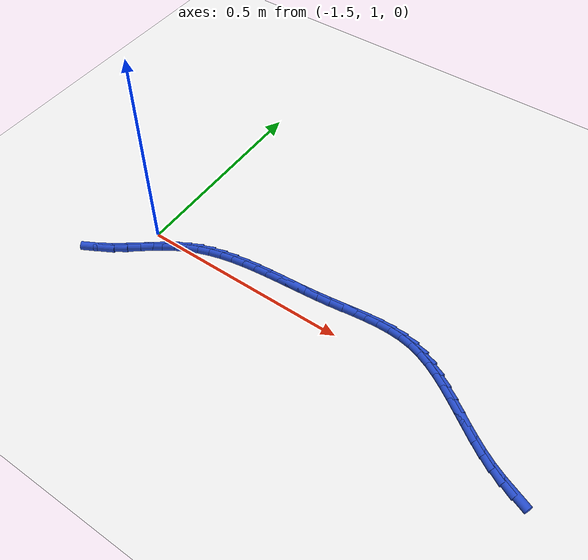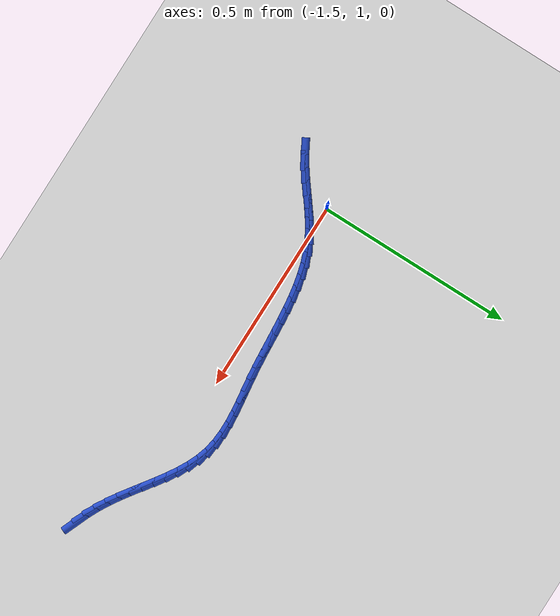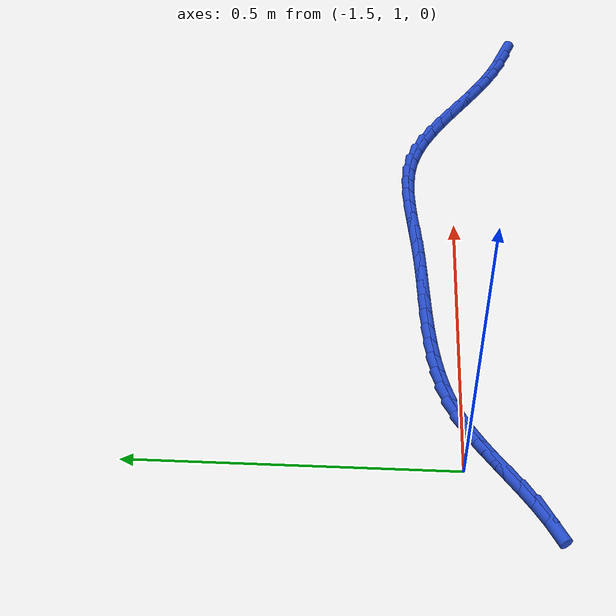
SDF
<sdf version="1.6">
 <world name="default">
  <model name="ground_plane">
   <static>1</static>
   <link name="link">
    <collision name="collision">
     <geometry><plane><normal>0 0 1</normal><size>100 100</size></plane></geometry>
     <surface><friction><ode><mu>100</mu><mu2>50</mu2></ode></friction></surface>
    </collision>
    <visual name="visual">
     <cast_shadows>0</cast_shadows>
     <geometry><plane><normal>0 0 1</normal><size>100 100</size></plane></geometry>
     <material>
      <script><uri>file://media/materials/scripts/gazebo.material</uri><name>Gazebo/WhiteGlow</name></script>
     </material>
    </visual>
   </link>
  </model>
  <model name="line">
   <link name="link_37">
    <pose>-0.5398096283026466 0.8931697962810513 0.01 0 1.57 -0.3888230230529627</pose>
    <collision name="collision">
     <geometry><cylinder><radius>0.01</radius><length>0.08</length></cylinder></geometry>
    </collision>
    <visual name="visual">
     <material>
      <script><name>Gazebo/Blue</name><uri>file://media/materials/scripts/gazebo.material</uri></script>
     </material>
     <geometry><cylinder><radius>0.01</radius><length>0.08</length></cylinder></geometry>
    </visual>
   </link>
   <link name="link_38">
    <pose>-0.56817109979009 0.9047889163653963 0.01 0 1.57 -0.4507395362927816</pose>
    <collision name="collision">
     <geometry><cylinder><radius>0.01</radius><length>0.08</length></cylinder></geometry>
    </collision>
    <visual name="visual">
     <material>
      <script><name>Gazebo/Blue</name><uri>file://media/materials/scripts/gazebo.material</uri></script>
     </material>
     <geometry><cylinder><radius>0.01</radius><length>0.08</length></cylinder></geometry>
    </visual>
   </link>
   <link name="link_39">
    <pose>-0.595803769565545 0.918162230282935 0.01 0 1.57 -0.5189964842098511</pose>
    <collision name="collision">
     <geometry><cylinder><radius>0.01</radius><length>0.08</length></cylinder></geometry>
    </collision>
    <visual name="visual">
     <material>
      <script><name>Gazebo/Blue</name><uri>file://media/materials/scripts/gazebo.material</uri></script>
     </material>
     <geometry><cylinder><radius>0.01</radius><length>0.08</length></cylinder></geometry>
    </visual>
   </link>
   <link name="link_40">
    <pose>-0.6225585781766925 0.9334453822699332 0.01 0 1.57 -0.5701683551198653</pose>
    <collision name="collision">
     <geometry><cylinder><radius>0.01</radius><length>0.08</length></cylinder></geometry>
    </collision>
    <visual name="visual">
     <material>
      <script><name>Gazebo/Blue</name><uri>file://media/materials/scripts/gazebo.material</uri></script>
     </material>
     <geometry><cylinder><radius>0.01</radius><length>0.08</length></cylinder></geometry>
    </visual>
   </link>
   <link name="link_41">
    <pose>-0.6485962486228254 0.9501408953793627 0.01 0 1.57 -0.6032331998880286</pose>
    <collision name="collision">
     <geometry><cylinder><radius>0.01</radius><length>0.08</length></cylinder></geometry>
    </collision>
    <visual name="visual">
     <material>
      <script><name>Gazebo/Blue</name><uri>file://media/materials/scripts/gazebo.material</uri></script>
     </material>
     <geometry><cylinder><radius>0.01</radius><length>0.08</length></cylinder></geometry>
    </visual>
   </link>
   <link name="link_42">
    <pose>-0.6740977089537417 0.9677086939100493 0.01 0 1.57 -0.6186269044177696</pose>
    <collision name="collision">
     <geometry><cylinder><radius>0.01</radius><length>0.08</length></cylinder></geometry>
    </collision>
    <visual name="visual">
     <material>
      <script><name>Gazebo/Blue</name><uri>file://media/materials/scripts/gazebo.material</uri></script>
     </material>
     <geometry><cylinder><radius>0.01</radius><length>0.08</length></cylinder></geometry>
    </visual>
   </link>
   <link name="link_43">
    <pose>-0.6992438872192397 0.9856087021608192 0.01 0 1.57 -0.6163973742456529</pose>
    <collision name="collision">
     <geometry><cylinder><radius>0.01</radius><length>0.08</length></cylinder></geometry>
    </collision>
    <visual name="visual">
     <material>
      <script><name>Gazebo/Blue</name><uri>file://media/materials/scripts/gazebo.material</uri></script>
     </material>
     <geometry><cylinder><radius>0.01</radius><length>0.08</length></cylinder></geometry>
    </visual>
   </link>
   <link name="link_44">
    <pose>-0.7242157114691179 1.0033008444304992 0.01 0 1.57 -0.5960503644967289</pose>
    <collision name="collision">
     <geometry><cylinder><radius>0.01</radius><length>0.08</length></cylinder></geometry>
    </collision>
    <visual name="visual">
     <material>
      <script><name>Gazebo/Blue</name><uri>file://media/materials/scripts/gazebo.material</uri></script>
     </material>
     <geometry><cylinder><radius>0.01</radius><length>0.08</length></cylinder></geometry>
    </visual>
   </link>
   <link name="link_45">
    <pose>-0.7491941097531744 1.020245045017915 0.01 0 1.57 -0.5565248570679779</pose>
    <collision name="collision">
     <geometry><cylinder><radius>0.01</radius><length>0.08</length></cylinder></geometry>
    </collision>
    <visual name="visual">
     <material>
      <script><name>Gazebo/Blue</name><uri>file://media/materials/scripts/gazebo.material</uri></script>
     </material>
     <geometry><cylinder><radius>0.01</radius><length>0.08</length></cylinder></geometry>
    </visual>
   </link>
   <link name="link_46">
    <pose>-0.7743600101212078 1.035901228221893 0.01 0 1.57 -0.4963317432481884</pose>
    <collision name="collision">
     <geometry><cylinder><radius>0.01</radius><length>0.08</length></cylinder></geometry>
    </collision>
    <visual name="visual">
     <material>
      <script><name>Gazebo/Blue</name><uri>file://media/materials/scripts/gazebo.material</uri></script>
     </material>
     <geometry><cylinder><radius>0.01</radius><length>0.08</length></cylinder></geometry>
    </visual>
   </link>
   <link name="link_47">
    <pose>-0.7998943406230158 1.0497293183412593 0.01 0 1.57 -0.41396386690748427</pose>
    <collision name="collision">
     <geometry><cylinder><radius>0.01</radius><length>0.08</length></cylinder></geometry>
    </collision>
    <visual name="visual">
     <material>
      <script><name>Gazebo/Blue</name><uri>file://media/materials/scripts/gazebo.material</uri></script>
     </material>
     <geometry><cylinder><radius>0.01</radius><length>0.08</length></cylinder></geometry>
    </visual>
   </link>
   <link name="link_48">
    <pose>-0.8259780293083971 1.0611892396748406 0.01 0 1.57 -0.3087285073231329</pose>
    <collision name="collision">
     <geometry><cylinder><radius>0.01</radius><length>0.08</length></cylinder></geometry>
    </collision>
    <visual name="visual">
     <material>
      <script><name>Gazebo/Blue</name><uri>file://media/materials/scripts/gazebo.material</uri></script>
     </material>
     <geometry><cylinder><radius>0.01</radius><length>0.08</length></cylinder></geometry>
    </visual>
   </link>
   <link name="link_49">
    <pose>-0.8527920042271497 1.0697409165214624 0.01 0 1.57 -0.18549978592933278</pose>
    <collision name="collision">
     <geometry><cylinder><radius>0.01</radius><length>0.08</length></cylinder></geometry>
    </collision>
    <visual name="visual">
     <material>
      <script><name>Gazebo/Blue</name><uri>file://media/materials/scripts/gazebo.material</uri></script>
     </material>
     <geometry><cylinder><radius>0.01</radius><length>0.08</length></cylinder></geometry>
    </visual>
   </link>
   <link name="link_50">
    <pose>-0.8804926074394791 1.0749391335600345 0.01 0 1.57 -0.07438732127856906</pose>
    <collision name="collision">
     <geometry><cylinder><radius>0.01</radius><length>0.08</length></cylinder></geometry>
    </collision>
    <visual name="visual">
     <material>
      <script><name>Gazebo/Blue</name><uri>file://media/materials/scripts/gazebo.material</uri></script>
     </material>
     <geometry><cylinder><radius>0.01</radius><length>0.08</length></cylinder></geometry>
    </visual>
   </link>
   <link name="link_51">
    <pose>-0.909047368598283 1.077067172349929 0.01 0 1.57 0.01096945344798775</pose>
    <collision name="collision">
     <geometry><cylinder><radius>0.01</radius><length>0.08</length></cylinder></geometry>
    </collision>
    <visual name="visual">
     <material>
      <script><name>Gazebo/Blue</name><uri>file://media/materials/scripts/gazebo.material</uri></script>
     </material>
     <geometry><cylinder><radius>0.01</radius><length>0.08</length></cylinder></geometry>
    </visual>
   </link>
   <link name="link_52">
    <pose>-0.9383363279898737 1.0767458755861432 0.01 0 1.57 0.07170795489163372</pose>
    <collision name="collision">
     <geometry><cylinder><radius>0.01</radius><length>0.08</length></cylinder></geometry>
    </collision>
    <visual name="visual">
     <material>
      <script><name>Gazebo/Blue</name><uri>file://media/materials/scripts/gazebo.material</uri></script>
     </material>
     <geometry><cylinder><radius>0.01</radius><length>0.08</length></cylinder></geometry>
    </visual>
   </link>
   <link name="link_53">
    <pose>-0.9682390480073012 1.0745979298242332 0.01 0 1.57 0.10983072902592239</pose>
    <collision name="collision">
     <geometry><cylinder><radius>0.01</radius><length>0.08</length></cylinder></geometry>
    </collision>
    <visual name="visual">
     <material>
      <script><name>Gazebo/Blue</name><uri>file://media/materials/scripts/gazebo.material</uri></script>
     </material>
     <geometry><cylinder><radius>0.01</radius><length>0.08</length></cylinder></geometry>
    </visual>
   </link>
   <link name="link_54">
    <pose>-0.9986350910436159 1.0712460216197555 0.01 0 1.57 0.12714022182581228</pose>
    <collision name="collision">
     <geometry><cylinder><radius>0.01</radius><length>0.08</length></cylinder></geometry>
    </collision>
    <visual name="visual">
     <material>
      <script><name>Gazebo/Blue</name><uri>file://media/materials/scripts/gazebo.material</uri></script>
     </material>
     <geometry><cylinder><radius>0.01</radius><length>0.08</length></cylinder></geometry>
    </visual>
   </link>
   <link name="link_55">
    <pose>-1.0294040194918677 1.0673128375282663 0.01 0 1.57 0.12480254622907483</pose>
    <collision name="collision">
     <geometry><cylinder><radius>0.01</radius><length>0.08</length></cylinder></geometry>
    </collision>
    <visual name="visual">
     <material>
      <script><name>Gazebo/Blue</name><uri>file://media/materials/scripts/gazebo.material</uri></script>
     </material>
     <geometry><cylinder><radius>0.01</radius><length>0.08</length></cylinder></geometry>
    </visual>
   </link>
   <link name="link_56">
    <pose>-1.0604253957451064 1.0634210641053223 0.01 0 1.57 0.10520944080305453</pose>
    <collision name="collision">
     <geometry><cylinder><radius>0.01</radius><length>0.08</length></cylinder></geometry>
    </collision>
    <visual name="visual">
     <material>
      <script><name>Gazebo/Blue</name><uri>file://media/materials/scripts/gazebo.material</uri></script>
     </material>
     <geometry><cylinder><radius>0.01</radius><length>0.08</length></cylinder></geometry>
    </visual>
   </link>
   <link name="link_57">
    <pose>-1.0915800318354472 1.0601311545983771 0.01 0 1.57 0.0856828569405367</pose>
    <collision name="collision">
     <geometry><cylinder><radius>0.01</radius><length>0.08</length></cylinder></geometry>
    </collision>
    <visual name="visual">
     <material>
      <script><name>Gazebo/Blue</name><uri>file://media/materials/scripts/gazebo.material</uri></script>
     </material>
     <geometry><cylinder><radius>0.01</radius><length>0.08</length></cylinder></geometry>
    </visual>
   </link>
   <link name="link_58">
    <pose>-1.1227597945045655 1.0574530263716857 0.01 0 1.57 0.07521198966103324</pose>
    <collision name="collision">
     <geometry><cylinder><radius>0.01</radius><length>0.08</length></cylinder></geometry>
    </collision>
    <visual name="visual">
     <material>
      <script><name>Gazebo/Blue</name><uri>file://media/materials/scripts/gazebo.material</uri></script>
     </material>
     <geometry><cylinder><radius>0.01</radius><length>0.08</length></cylinder></geometry>
    </visual>
   </link>
   <link name="link_59">
    <pose>-1.1538623189325277 1.0551093226367927 0.01 0 1.57 0.07389194304261185</pose>
    <collision name="collision">
     <geometry><cylinder><radius>0.01</radius><length>0.08</length></cylinder></geometry>
    </collision>
    <visual name="visual">
     <material>
      <script><name>Gazebo/Blue</name><uri>file://media/materials/scripts/gazebo.material</uri></script>
     </material>
     <geometry><cylinder><radius>0.01</radius><length>0.08</length></cylinder></geometry>
    </visual>
   </link>
   <link name="link_60">
    <pose>-1.1847852903013625 1.0528201964560635 0.01 0 1.57 0.08187611354928515</pose>
    <collision name="collision">
     <geometry><cylinder><radius>0.01</radius><length>0.08</length></cylinder></geometry>
    </collision>
    <visual name="visual">
     <material>
      <script><name>Gazebo/Blue</name><uri>file://media/materials/scripts/gazebo.material</uri></script>
     </material>
     <geometry><cylinder><radius>0.01</radius><length>0.08</length></cylinder></geometry>
    </visual>
   </link>
   <link name="link_61">
    <pose>-1.2154263937931002 1.0503058008918624 0.01 0 1.57 0.09946641353819252</pose>
    <collision name="collision">
     <geometry><cylinder><radius>0.01</radius><length>0.08</length></cylinder></geometry>
    </collision>
    <visual name="visual">
     <material>
      <script><name>Gazebo/Blue</name><uri>file://media/materials/scripts/gazebo.material</uri></script>
     </material>
     <geometry><cylinder><radius>0.01</radius><length>0.08</length></cylinder></geometry>
    </visual>
   </link>
   <link name="link_62">
    <pose>-1.2456833145897697 1.047286289006554 0.01 0 1.57 0.12710484813376094</pose>
    <collision name="collision">
     <geometry><cylinder><radius>0.01</radius><length>0.08</length></cylinder></geometry>
    </collision>
    <visual name="visual">
     <material>
      <script><name>Gazebo/Blue</name><uri>file://media/materials/scripts/gazebo.material</uri></script>
     </material>
     <geometry><cylinder><radius>0.01</radius><length>0.08</length></cylinder></geometry>
    </visual>
   </link>
   <link name="link_63">
    <pose>-1.2754537378734025 1.043481813862503 0.01 0 1.57 0.1653381711260512</pose>
    <collision name="collision">
     <geometry><cylinder><radius>0.01</radius><length>0.08</length></cylinder></geometry>
    </collision>
    <visual name="visual">
     <material>
      <script><name>Gazebo/Blue</name><uri>file://media/materials/scripts/gazebo.material</uri></script>
     </material>
     <geometry><cylinder><radius>0.01</radius><length>0.08</length></cylinder></geometry>
    </visual>
   </link>
   <link name="link_64">
    <pose>-1.3046353488260265 1.0386125285220744 0.01 0 1.57 0.21474292622177274</pose>
    <collision name="collision">
     <geometry><cylinder><radius>0.01</radius><length>0.08</length></cylinder></geometry>
    </collision>
    <visual name="visual">
     <material>
      <script><name>Gazebo/Blue</name><uri>file://media/materials/scripts/gazebo.material</uri></script>
     </material>
     <geometry><cylinder><radius>0.01</radius><length>0.08</length></cylinder></geometry>
    </visual>
   </link>
   <link name="link_65">
    <pose>-1.3331258326296727 1.032398586047633 0.01 0 1.57 0.2757945706906577</pose>
    <collision name="collision">
     <geometry><cylinder><radius>0.01</radius><length>0.08</length></cylinder></geometry>
    </collision>
    <visual name="visual">
     <material>
      <script><name>Gazebo/Blue</name><uri>file://media/materials/scripts/gazebo.material</uri></script>
     </material>
     <geometry><cylinder><radius>0.01</radius><length>0.08</length></cylinder></geometry>
    </visual>
   </link>
   <link name="link_66">
    <pose>-1.3608228744663704 1.0245601395015425 0.01 0 1.57 0.34866804190396805</pose>
    <collision name="collision">
     <geometry><cylinder><radius>0.01</radius><length>0.08</length></cylinder></geometry>
    </collision>
    <visual name="visual">
     <material>
      <script><name>Gazebo/Blue</name><uri>file://media/materials/scripts/gazebo.material</uri></script>
     </material>
     <geometry><cylinder><radius>0.01</radius><length>0.08</length></cylinder></geometry>
    </visual>
   </link>
   <link name="link_67">
    <pose>-1.3876241595181495 1.0148173419461686 0.01 0 1.57 0.43297696151213083</pose>
    <collision name="collision">
     <geometry><cylinder><radius>0.01</radius><length>0.08</length></cylinder></geometry>
    </collision>
    <visual name="visual">
     <material>
      <script><name>Gazebo/Blue</name><uri>file://media/materials/scripts/gazebo.material</uri></script>
     </material>
     <geometry><cylinder><radius>0.01</radius><length>0.08</length></cylinder></geometry>
    </visual>
   </link>
   <link name="link_68">
    <pose>-1.41342737296704 1.0028903464438754 0.01 0 1.57 0.5221306683159997</pose>
    <collision name="collision">
     <geometry><cylinder><radius>0.01</radius><length>0.08</length></cylinder></geometry>
    </collision>
    <visual name="visual">
     <material>
      <script><name>Gazebo/Blue</name><uri>file://media/materials/scripts/gazebo.material</uri></script>
     </material>
     <geometry><cylinder><radius>0.01</radius><length>0.08</length></cylinder></geometry>
    </visual>
   </link>
   <link name="link_69">
    <pose>-1.4382013594802279 0.9886355321200069 0.01 0 1.57 0.5917377105811772</pose>
    <collision name="collision">
     <geometry><cylinder><radius>0.01</radius><length>0.08</length></cylinder></geometry>
    </collision>
    <visual name="visual">
     <material>
      <script><name>Gazebo/Blue</name><uri>file://media/materials/scripts/gazebo.material</uri></script>
     </material>
     <geometry><cylinder><radius>0.01</radius><length>0.08</length></cylinder></geometry>
    </visual>
   </link>
   <link name="link_70">
    <pose>-1.4622199861949203 0.9724932060206788 0.01 0 1.57 0.6358424477324445</pose>
    <collision name="collision">
     <geometry><cylinder><radius>0.01</radius><length>0.08</length></cylinder></geometry>
    </collision>
    <visual name="visual">
     <material>
      <script><name>Gazebo/Blue</name><uri>file://media/materials/scripts/gazebo.material</uri></script>
     </material>
     <geometry><cylinder><radius>0.01</radius><length>0.08</length></cylinder></geometry>
    </visual>
   </link>
   <link name="link_71">
    <pose>-1.4858388317384632 0.9550601017678538 0.01 0 1.57 0.6555038682424891</pose>
    <collision name="collision">
     <geometry><cylinder><radius>0.01</radius><length>0.08</length></cylinder></geometry>
    </collision>
    <visual name="visual">
     <material>
      <script><name>Gazebo/Blue</name><uri>file://media/materials/scripts/gazebo.material</uri></script>
     </material>
     <geometry><cylinder><radius>0.01</radius><length>0.08</length></cylinder></geometry>
    </visual>
   </link>
   <link name="link_72">
    <pose>-1.5094134756726505 0.9369329547723749 0.01 0 1.57 0.6517539682209945</pose>
    <collision name="collision">
     <geometry><cylinder><radius>0.01</radius><length>0.08</length></cylinder></geometry>
    </collision>
    <visual name="visual">
     <material>
      <script><name>Gazebo/Blue</name><uri>file://media/materials/scripts/gazebo.material</uri></script>
     </material>
     <geometry><cylinder><radius>0.01</radius><length>0.08</length></cylinder></geometry>
    </visual>
   </link>
   <link name="link_73">
    <pose>-1.533299497559273 0.9187085004450846 0.01 0 1.57 0.6252794125403575</pose>
    <collision name="collision">
     <geometry><cylinder><radius>0.01</radius><length>0.08</length></cylinder></geometry>
    </collision>
    <visual name="visual">
     <material>
      <script><name>Gazebo/Blue</name><uri>file://media/materials/scripts/gazebo.material</uri></script>
     </material>
     <geometry><cylinder><radius>0.01</radius><length>0.08</length></cylinder></geometry>
    </visual>
   </link>
   <link name="link_74">
    <pose>-1.557852476960125 0.9009834741968255 0.01 0 1.57 0.5765065148959982</pose>
    <collision name="collision">
     <geometry><cylinder><radius>0.01</radius><length>0.08</length></cylinder></geometry>
    </collision>
    <visual name="visual">
     <material>
      <script><name>Gazebo/Blue</name><uri>file://media/materials/scripts/gazebo.material</uri></script>
     </material>
     <geometry><cylinder><radius>0.01</radius><length>0.08</length></cylinder></geometry>
    </visual>
   </link>
   <link name="link_75">
    <pose>-1.5834279934369977 0.8843546114384404 0.01 0 1.57 0.5060126820836093</pose>
    <collision name="collision">
     <geometry><cylinder><radius>0.01</radius><length>0.08</length></cylinder></geometry>
    </collision>
    <visual name="visual">
     <material>
      <script><name>Gazebo/Blue</name><uri>file://media/materials/scripts/gazebo.material</uri></script>
     </material>
     <geometry><cylinder><radius>0.01</radius><length>0.08</length></cylinder></geometry>
    </visual>
   </link>
  </model>
 </world>
</sdf>
